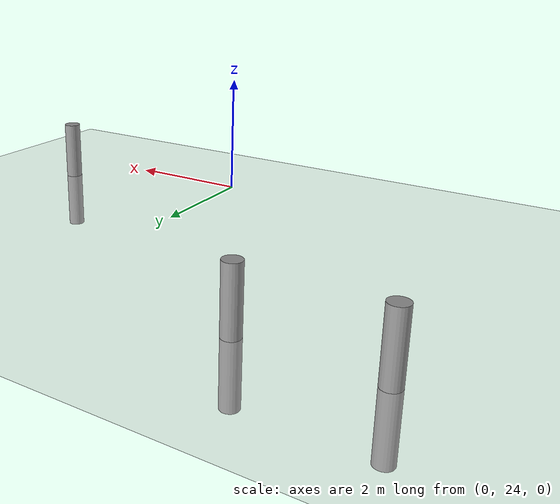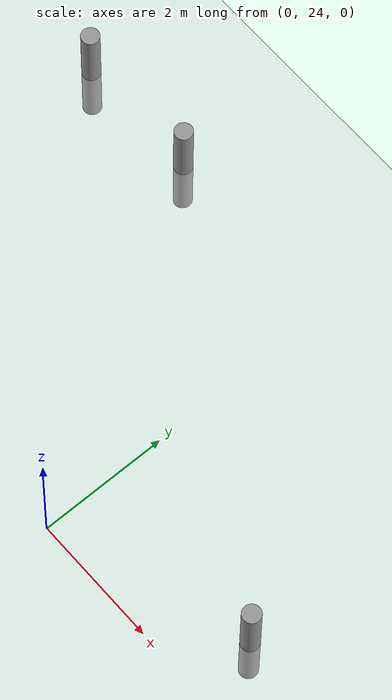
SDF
<sdf version="1.6">
 <world name="default">
  <model name="ground_plane">
   <static>1</static>
   <link name="link">
    <collision name="collision">
     <geometry><plane><normal>0 0 1</normal><size>100 100</size></plane></geometry>
     <surface><friction><ode><mu>100</mu><mu2>50</mu2></ode></friction></surface>
    </collision>
    <visual name="visual">
     <cast_shadows>0</cast_shadows>
     <geometry><plane><normal>0 0 1</normal><size>100 100</size></plane></geometry>
     <material>
      <script><uri>file://media/materials/scripts/gazebo.material</uri><name>Gazebo/Grey</name></script>
     </material>
    </visual>
   </link>
  </model>
  <model name="my_cylinder014_clone_25_0">
   <pose>3 25 0 0 -0 0</pose>
   <link name="my_cylinder014::link">
    <inertial>
     <mass>1</mass>
     <inertia><ixx>0.145833</ixx><ixy>0</ixy><ixz>0</ixz><iyy>0.145833</iyy><iyz>0</iyz><izz>0.125</izz></inertia>
    </inertial>
    <visual name="visual">
     <geometry><cylinder><radius>0.14</radius><length>2</length></cylinder></geometry>
     <material>
      <script><name>Gazebo/Grey</name><uri>file://media/materials/scripts/gazebo.material</uri></script>
      <ambient>0.3 0.3 0.3 1</ambient>
      <diffuse>0.7 0.7 0.7 1</diffuse>
      <specular>1 0.01 0.01 1</specular>
      <emissive>0 0 0 1</emissive>
      <shader type="vertex"><normal_map>__default__</normal_map></shader>
     </material>
    </visual>
    <collision name="collision">
     <geometry><cylinder><radius>0.14</radius><length>2</length></cylinder></geometry>
     <surface>
      <friction>
       <ode><mu>1</mu><mu2>1</mu2><fdir1>0 0 0</fdir1><slip1>0</slip1><slip2>0</slip2></ode>
       <torsional>
        <coefficient>1</coefficient>
        <patch_radius>0</patch_radius>
        <surface_radius>0</surface_radius>
        <use_patch_radius>1</use_patch_radius>
        <ode><slip>0</slip></ode>
       </torsional>
      </friction>
      <bounce><restitution_coefficient>0</restitution_coefficient><threshold>1e+06</threshold></bounce>
      <contact>
       <collide_without_contact>0</collide_without_contact>
       <collide_without_contact_bitmask>1</collide_without_contact_bitmask>
       <collide_bitmask>1</collide_bitmask>
       <ode>
        <soft_cfm>0</soft_cfm>
        <soft_erp>0.2</soft_erp>
        <kp>1e+13</kp>
        <kd>1</kd>
        <max_vel>0.01</max_vel>
        <min_depth>0</min_depth>
       </ode>
       <bullet>
        <split_impulse>1</split_impulse>
        <split_impulse_penetration_threshold>-0.01</split_impulse_penetration_threshold>
        <soft_cfm>0</soft_cfm>
        <soft_erp>0.2</soft_erp>
        <kp>1e+13</kp>
        <kd>1</kd>
       </bullet>
      </contact>
     </surface>
    </collision>
   </link>
   <static>1</static>
  </model>
  <model name="my_cylinder014_clone_38_0">
   <pose>-3 29 0 0 -0 0</pose>
   <link name="my_cylinder014::link">
    <inertial>
     <mass>1</mass>
     <inertia><ixx>0.145833</ixx><ixy>0</ixy><ixz>0</ixz><iyy>0.145833</iyy><iyz>0</iyz><izz>0.125</izz></inertia>
    </inertial>
    <visual name="visual">
     <geometry><cylinder><radius>0.14</radius><length>2</length></cylinder></geometry>
     <material>
      <script><name>Gazebo/Grey</name><uri>file://media/materials/scripts/gazebo.material</uri></script>
      <ambient>0.3 0.3 0.3 1</ambient>
      <diffuse>0.7 0.7 0.7 1</diffuse>
      <specular>1 0.01 0.01 1</specular>
      <emissive>0 0 0 1</emissive>
      <shader type="vertex"><normal_map>__default__</normal_map></shader>
     </material>
    </visual>
    <collision name="collision">
     <geometry><cylinder><radius>0.14</radius><length>2</length></cylinder></geometry>
     <surface>
      <friction>
       <ode><mu>1</mu><mu2>1</mu2><fdir1>0 0 0</fdir1><slip1>0</slip1><slip2>0</slip2></ode>
       <torsional>
        <coefficient>1</coefficient>
        <patch_radius>0</patch_radius>
        <surface_radius>0</surface_radius>
        <use_patch_radius>1</use_patch_radius>
        <ode><slip>0</slip></ode>
       </torsional>
      </friction>
      <bounce><restitution_coefficient>0</restitution_coefficient><threshold>1e+06</threshold></bounce>
      <contact>
       <collide_without_contact>0</collide_without_contact>
       <collide_without_contact_bitmask>1</collide_without_contact_bitmask>
       <collide_bitmask>1</collide_bitmask>
       <ode>
        <soft_cfm>0</soft_cfm>
        <soft_erp>0.2</soft_erp>
        <kp>1e+13</kp>
        <kd>1</kd>
        <max_vel>0.01</max_vel>
        <min_depth>0</min_depth>
       </ode>
       <bullet>
        <split_impulse>1</split_impulse>
        <split_impulse_penetration_threshold>-0.01</split_impulse_penetration_threshold>
        <soft_cfm>0</soft_cfm>
        <soft_erp>0.2</soft_erp>
        <kp>1e+13</kp>
        <kd>1</kd>
       </bullet>
      </contact>
     </surface>
    </collision>
   </link>
   <static>1</static>
  </model>
  <model name="my_cylinder014_clone_37_1">
   <pose>-5 29 0 0 -0 0</pose>
   <link name="my_cylinder014::link">
    <inertial>
     <mass>1</mass>
     <inertia><ixx>0.145833</ixx><ixy>0</ixy><ixz>0</ixz><iyy>0.145833</iyy><iyz>0</iyz><izz>0.125</izz></inertia>
    </inertial>
    <visual name="visual">
     <geometry><cylinder><radius>0.14</radius><length>2</length></cylinder></geometry>
     <material>
      <script><name>Gazebo/Grey</name><uri>file://media/materials/scripts/gazebo.material</uri></script>
      <ambient>0.3 0.3 0.3 1</ambient>
      <diffuse>0.7 0.7 0.7 1</diffuse>
      <specular>1 0.01 0.01 1</specular>
      <emissive>0 0 0 1</emissive>
      <shader type="vertex"><normal_map>__default__</normal_map></shader>
     </material>
    </visual>
    <collision name="collision">
     <geometry><cylinder><radius>0.14</radius><length>2</length></cylinder></geometry>
     <surface>
      <friction>
       <ode><mu>1</mu><mu2>1</mu2><fdir1>0 0 0</fdir1><slip1>0</slip1><slip2>0</slip2></ode>
       <torsional>
        <coefficient>1</coefficient>
        <patch_radius>0</patch_radius>
        <surface_radius>0</surface_radius>
        <use_patch_radius>1</use_patch_radius>
        <ode><slip>0</slip></ode>
       </torsional>
      </friction>
      <bounce><restitution_coefficient>0</restitution_coefficient><threshold>1e+06</threshold></bounce>
      <contact>
       <collide_without_contact>0</collide_without_contact>
       <collide_without_contact_bitmask>1</collide_without_contact_bitmask>
       <collide_bitmask>1</collide_bitmask>
       <ode>
        <soft_cfm>0</soft_cfm>
        <soft_erp>0.2</soft_erp>
        <kp>1e+13</kp>
        <kd>1</kd>
        <max_vel>0.01</max_vel>
        <min_depth>0</min_depth>
       </ode>
       <bullet>
        <split_impulse>1</split_impulse>
        <split_impulse_penetration_threshold>-0.01</split_impulse_penetration_threshold>
        <soft_cfm>0</soft_cfm>
        <soft_erp>0.2</soft_erp>
        <kp>1e+13</kp>
        <kd>1</kd>
       </bullet>
      </contact>
     </surface>
    </collision>
   </link>
   <static>1</static>
  </model>
 </world>
</sdf>
